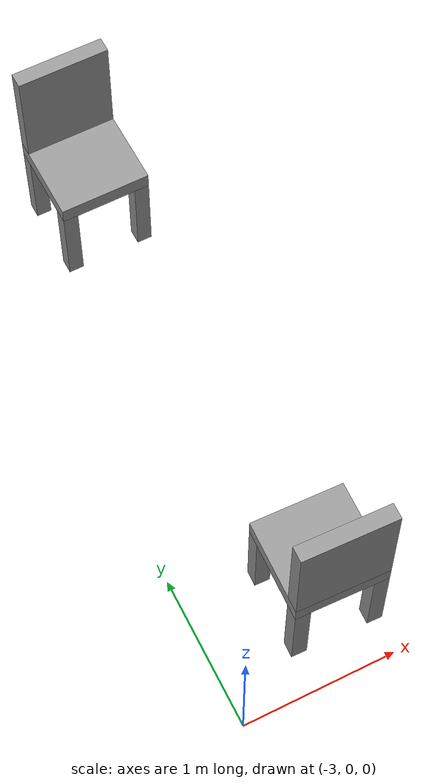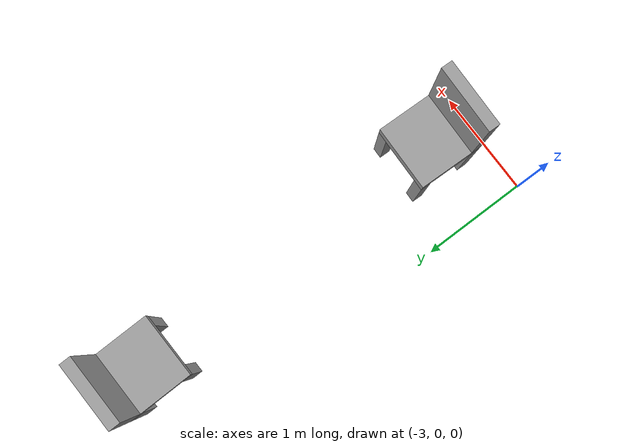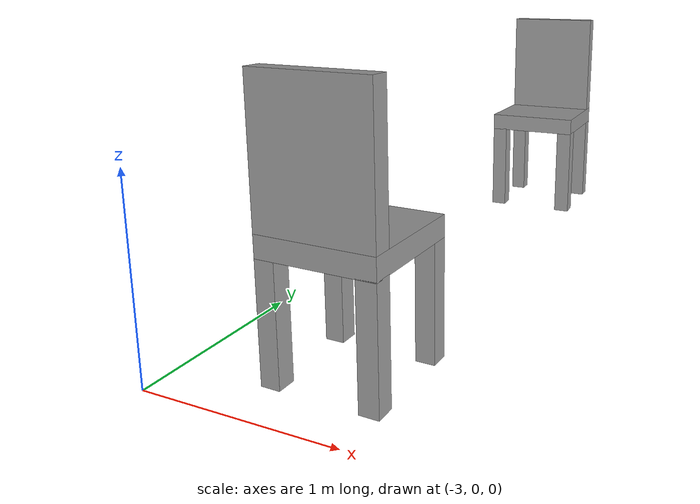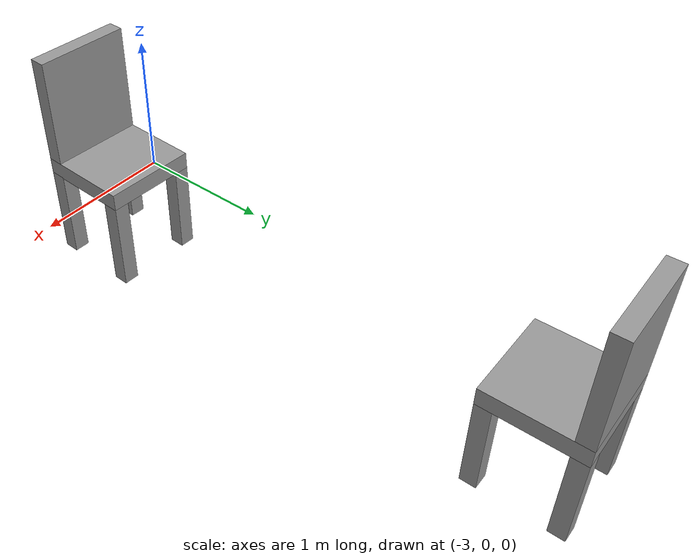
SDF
<sdf version="1.7">
 <world name="default">
  <model name="simple_chair_0_clone">
   <link name="link_0_clone">
    <inertial>
     <mass>1</mass>
     <inertia>
      <ixx>0.166667</ixx>
      <ixy>0</ixy>
      <ixz>0</ixz>
      <iyy>0.166667</iyy>
      <iyz>0</iyz>
      <izz>0.166667</izz>
     </inertia>
    </inertial>
    <pose>-0.041667 -0 0.165833 0 -0 0</pose>
    <visual name="visual">
     <geometry><box><size>0.6 0.6 0.11</size></box></geometry>
     <material>
      <lighting>1</lighting>
      <script><uri>file://media/materials/scripts/gazebo.material</uri><name>Gazebo/Grey</name></script>
      <shader type="pixel"><normal_map>__default__</normal_map></shader>
      <ambient>0.3 0.3 0.3 1</ambient>
      <diffuse>0.7 0.7 0.7 1</diffuse>
      <specular>0.01 0.01 0.01 1</specular>
      <emissive>0 0 0 1</emissive>
     </material>
    </visual>
    <collision name="collision">
     <geometry><box><size>0.6 0.6 0.1</size></box></geometry>
     <surface>
      <friction>
       <ode><mu>1</mu><mu2>1</mu2><fdir1>0 0 0</fdir1><slip1>0</slip1><slip2>0</slip2></ode>
       <torsional>
        <coefficient>1</coefficient>
        <patch_radius>0</patch_radius>
        <surface_radius>0</surface_radius>
        <use_patch_radius>1</use_patch_radius>
        <ode><slip>0</slip></ode>
       </torsional>
      </friction>
      <bounce><restitution_coefficient>0</restitution_coefficient><threshold>1e+06</threshold></bounce>
      <contact>
       <collide_without_contact>0</collide_without_contact>
       <collide_without_contact_bitmask>1</collide_without_contact_bitmask>
       <collide_bitmask>1</collide_bitmask>
       <ode>
        <soft_cfm>0</soft_cfm>
        <soft_erp>0.2</soft_erp>
        <kp>1e+13</kp>
        <kd>1</kd>
        <max_vel>0.01</max_vel>
        <min_depth>0</min_depth>
       </ode>
       <bullet>
        <split_impulse>1</split_impulse>
        <split_impulse_penetration_threshold>-0.01</split_impulse_penetration_threshold>
        <soft_cfm>0</soft_cfm>
        <soft_erp>0.2</soft_erp>
        <kp>1e+13</kp>
        <kd>1</kd>
       </bullet>
      </contact>
     </surface>
    </collision>
   </link>
   <link name="link_1_clone">
    <inertial>
     <mass>1</mass>
     <inertia>
      <ixx>0.166667</ixx>
      <ixy>0</ixy>
      <ixz>0</ixz>
      <iyy>0.166667</iyy>
      <iyz>0</iyz>
      <izz>0.166667</izz>
     </inertia>
    </inertial>
    <pose>-0.291667 0.25 -0.184167 0 -0 0</pose>
    <visual name="visual">
     <geometry><box><size>0.1 0.1 0.6</size></box></geometry>
     <material>
      <lighting>1</lighting>
      <script><uri>file://media/materials/scripts/gazebo.material</uri><name>Gazebo/Grey</name></script>
      <shader type="pixel"><normal_map>__default__</normal_map></shader>
      <ambient>0.3 0.3 0.3 1</ambient>
      <diffuse>0.7 0.7 0.7 1</diffuse>
      <specular>0.01 0.01 0.01 1</specular>
      <emissive>0 0 0 1</emissive>
     </material>
    </visual>
    <collision name="collision">
     <geometry><box><size>0.1 0.1 0.6</size></box></geometry>
     <surface>
      <friction>
       <ode><mu>1</mu><mu2>1</mu2><fdir1>0 0 0</fdir1><slip1>0</slip1><slip2>0</slip2></ode>
       <torsional>
        <coefficient>1</coefficient>
        <patch_radius>0</patch_radius>
        <surface_radius>0</surface_radius>
        <use_patch_radius>1</use_patch_radius>
        <ode><slip>0</slip></ode>
       </torsional>
      </friction>
      <bounce><restitution_coefficient>0</restitution_coefficient><threshold>1e+06</threshold></bounce>
      <contact>
       <collide_without_contact>0</collide_without_contact>
       <collide_without_contact_bitmask>1</collide_without_contact_bitmask>
       <collide_bitmask>1</collide_bitmask>
       <ode>
        <soft_cfm>0</soft_cfm>
        <soft_erp>0.2</soft_erp>
        <kp>1e+13</kp>
        <kd>1</kd>
        <max_vel>0.01</max_vel>
        <min_depth>0</min_depth>
       </ode>
       <bullet>
        <split_impulse>1</split_impulse>
        <split_impulse_penetration_threshold>-0.01</split_impulse_penetration_threshold>
        <soft_cfm>0</soft_cfm>
        <soft_erp>0.2</soft_erp>
        <kp>1e+13</kp>
        <kd>1</kd>
       </bullet>
      </contact>
     </surface>
    </collision>
   </link>
   <link name="link_1_clone_0">
    <inertial>
     <mass>1</mass>
     <inertia>
      <ixx>0.166667</ixx>
      <ixy>0</ixy>
      <ixz>0</ixz>
      <iyy>0.166667</iyy>
      <iyz>0</iyz>
      <izz>0.166667</izz>
     </inertia>
    </inertial>
    <pose>0.208333 0.25 -0.184167 0 -0 0</pose>
    <visual name="visual">
     <geometry><box><size>0.1 0.1 0.6</size></box></geometry>
     <material>
      <lighting>1</lighting>
      <script><uri>file://media/materials/scripts/gazebo.material</uri><name>Gazebo/Grey</name></script>
      <shader type="pixel"><normal_map>__default__</normal_map></shader>
      <ambient>0.3 0.3 0.3 1</ambient>
      <diffuse>0.7 0.7 0.7 1</diffuse>
      <specular>0.01 0.01 0.01 1</specular>
      <emissive>0 0 0 1</emissive>
     </material>
    </visual>
    <collision name="collision">
     <geometry><box><size>0.1 0.1 0.6</size></box></geometry>
     <surface>
      <friction>
       <ode><mu>1</mu><mu2>1</mu2><fdir1>0 0 0</fdir1><slip1>0</slip1><slip2>0</slip2></ode>
       <torsional>
        <coefficient>1</coefficient>
        <patch_radius>0</patch_radius>
        <surface_radius>0</surface_radius>
        <use_patch_radius>1</use_patch_radius>
        <ode><slip>0</slip></ode>
       </torsional>
      </friction>
      <bounce><restitution_coefficient>0</restitution_coefficient><threshold>1e+06</threshold></bounce>
      <contact>
       <collide_without_contact>0</collide_without_contact>
       <collide_without_contact_bitmask>1</collide_without_contact_bitmask>
       <collide_bitmask>1</collide_bitmask>
       <ode>
        <soft_cfm>0</soft_cfm>
        <soft_erp>0.2</soft_erp>
        <kp>1e+13</kp>
        <kd>1</kd>
        <max_vel>0.01</max_vel>
        <min_depth>0</min_depth>
       </ode>
       <bullet>
        <split_impulse>1</split_impulse>
        <split_impulse_penetration_threshold>-0.01</split_impulse_penetration_threshold>
        <soft_cfm>0</soft_cfm>
        <soft_erp>0.2</soft_erp>
        <kp>1e+13</kp>
        <kd>1</kd>
       </bullet>
      </contact>
     </surface>
    </collision>
   </link>
   <link name="link_1_clone_1">
    <inertial>
     <mass>1</mass>
     <inertia>
      <ixx>0.166667</ixx>
      <ixy>0</ixy>
      <ixz>0</ixz>
      <iyy>0.166667</iyy>
      <iyz>0</iyz>
      <izz>0.166667</izz>
     </inertia>
    </inertial>
    <pose>0.208333 -0.25 -0.184167 0 -0 0</pose>
    <visual name="visual">
     <geometry><box><size>0.1 0.1 0.6</size></box></geometry>
     <material>
      <lighting>1</lighting>
      <script><uri>file://media/materials/scripts/gazebo.material</uri><name>Gazebo/Grey</name></script>
      <shader type="pixel"><normal_map>__default__</normal_map></shader>
      <ambient>0.3 0.3 0.3 1</ambient>
      <diffuse>0.7 0.7 0.7 1</diffuse>
      <specular>0.01 0.01 0.01 1</specular>
      <emissive>0 0 0 1</emissive>
     </material>
    </visual>
    <collision name="collision">
     <geometry><box><size>0.1 0.1 0.6</size></box></geometry>
     <surface>
      <friction>
       <ode><mu>1</mu><mu2>1</mu2><fdir1>0 0 0</fdir1><slip1>0</slip1><slip2>0</slip2></ode>
       <torsional>
        <coefficient>1</coefficient>
        <patch_radius>0</patch_radius>
        <surface_radius>0</surface_radius>
        <use_patch_radius>1</use_patch_radius>
        <ode><slip>0</slip></ode>
       </torsional>
      </friction>
      <bounce><restitution_coefficient>0</restitution_coefficient><threshold>1e+06</threshold></bounce>
      <contact>
       <collide_without_contact>0</collide_without_contact>
       <collide_without_contact_bitmask>1</collide_without_contact_bitmask>
       <collide_bitmask>1</collide_bitmask>
       <ode>
        <soft_cfm>0</soft_cfm>
        <soft_erp>0.2</soft_erp>
        <kp>1e+13</kp>
        <kd>1</kd>
        <max_vel>0.01</max_vel>
        <min_depth>0</min_depth>
       </ode>
       <bullet>
        <split_impulse>1</split_impulse>
        <split_impulse_penetration_threshold>-0.01</split_impulse_penetration_threshold>
        <soft_cfm>0</soft_cfm>
        <soft_erp>0.2</soft_erp>
        <kp>1e+13</kp>
        <kd>1</kd>
       </bullet>
      </contact>
     </surface>
    </collision>
   </link>
   <link name="link_1_clone_clone">
    <inertial>
     <mass>1</mass>
     <inertia>
      <ixx>0.166667</ixx>
      <ixy>0</ixy>
      <ixz>0</ixz>
      <iyy>0.166667</iyy>
      <iyz>0</iyz>
      <izz>0.166667</izz>
     </inertia>
    </inertial>
    <pose>-0.291667 -0.25 -0.184167 0 -0 0</pose>
    <visual name="visual">
     <geometry><box><size>0.1 0.1 0.6</size></box></geometry>
     <material>
      <lighting>1</lighting>
      <script><uri>file://media/materials/scripts/gazebo.material</uri><name>Gazebo/Grey</name></script>
      <shader type="pixel"><normal_map>__default__</normal_map></shader>
      <ambient>0.3 0.3 0.3 1</ambient>
      <diffuse>0.7 0.7 0.7 1</diffuse>
      <specular>0.01 0.01 0.01 1</specular>
      <emissive>0 0 0 1</emissive>
     </material>
    </visual>
    <collision name="collision">
     <geometry><box><size>0.1 0.1 0.6</size></box></geometry>
     <surface>
      <friction>
       <ode><mu>1</mu><mu2>1</mu2><fdir1>0 0 0</fdir1><slip1>0</slip1><slip2>0</slip2></ode>
       <torsional>
        <coefficient>1</coefficient>
        <patch_radius>0</patch_radius>
        <surface_radius>0</surface_radius>
        <use_patch_radius>1</use_patch_radius>
        <ode><slip>0</slip></ode>
       </torsional>
      </friction>
      <bounce><restitution_coefficient>0</restitution_coefficient><threshold>1e+06</threshold></bounce>
      <contact>
       <collide_without_contact>0</collide_without_contact>
       <collide_without_contact_bitmask>1</collide_without_contact_bitmask>
       <collide_bitmask>1</collide_bitmask>
       <ode>
        <soft_cfm>0</soft_cfm>
        <soft_erp>0.2</soft_erp>
        <kp>1e+13</kp>
        <kd>1</kd>
        <max_vel>0.01</max_vel>
        <min_depth>0</min_depth>
       </ode>
       <bullet>
        <split_impulse>1</split_impulse>
        <split_impulse_penetration_threshold>-0.01</split_impulse_penetration_threshold>
        <soft_cfm>0</soft_cfm>
        <soft_erp>0.2</soft_erp>
        <kp>1e+13</kp>
        <kd>1</kd>
       </bullet>
      </contact>
     </surface>
    </collision>
   </link>
   <link name="link_2_clone">
    <inertial>
     <mass>1</mass>
     <inertia>
      <ixx>0.166667</ixx>
      <ixy>0</ixy>
      <ixz>0</ixz>
      <iyy>0.166667</iyy>
      <iyz>0</iyz>
      <izz>0.166667</izz>
     </inertia>
    </inertial>
    <pose>0.208333 -0 0.570833 0 -0 0</pose>
    <visual name="visual">
     <geometry><box><size>0.1 0.6 0.7</size></box></geometry>
     <material>
      <lighting>1</lighting>
      <script><uri>file://media/materials/scripts/gazebo.material</uri><name>Gazebo/Grey</name></script>
      <shader type="pixel"><normal_map>__default__</normal_map></shader>
      <ambient>0.3 0.3 0.3 1</ambient>
      <diffuse>0.7 0.7 0.7 1</diffuse>
      <specular>0.01 0.01 0.01 1</specular>
      <emissive>0 0 0 1</emissive>
     </material>
    </visual>
    <collision name="collision">
     <geometry><box><size>0.1 0.6 0.7</size></box></geometry>
     <surface>
      <friction>
       <ode><mu>1</mu><mu2>1</mu2><fdir1>0 0 0</fdir1><slip1>0</slip1><slip2>0</slip2></ode>
       <torsional>
        <coefficient>1</coefficient>
        <patch_radius>0</patch_radius>
        <surface_radius>0</surface_radius>
        <use_patch_radius>1</use_patch_radius>
        <ode><slip>0</slip></ode>
       </torsional>
      </friction>
      <bounce><restitution_coefficient>0</restitution_coefficient><threshold>1e+06</threshold></bounce>
      <contact>
       <collide_without_contact>0</collide_without_contact>
       <collide_without_contact_bitmask>1</collide_without_contact_bitmask>
       <collide_bitmask>1</collide_bitmask>
       <ode>
        <soft_cfm>0</soft_cfm>
        <soft_erp>0.2</soft_erp>
        <kp>1e+13</kp>
        <kd>1</kd>
        <max_vel>0.01</max_vel>
        <min_depth>0</min_depth>
       </ode>
       <bullet>
        <split_impulse>1</split_impulse>
        <split_impulse_penetration_threshold>-0.01</split_impulse_penetration_threshold>
        <soft_cfm>0</soft_cfm>
        <soft_erp>0.2</soft_erp>
        <kp>1e+13</kp>
        <kd>1</kd>
       </bullet>
      </contact>
     </surface>
    </collision>
   </link>
   <joint name="link_0_clone_JOINT_0" type="fixed">
    <parent>link_0_clone</parent>
    <child>link_1_clone_clone</child>
    <physics>
     <ode><limit><cfm>0</cfm><erp>0.2</erp></limit><suspension><cfm>0</cfm><erp>0.2</erp></suspension></ode>
    </physics>
   </joint>
   <joint name="link_0_clone_JOINT_1" type="fixed">
    <parent>link_0_clone</parent>
    <child>link_1_clone</child>
    <physics>
     <ode><limit><cfm>0</cfm><erp>0.2</erp></limit><suspension><cfm>0</cfm><erp>0.2</erp></suspension></ode>
    </physics>
   </joint>
   <joint name="link_0_clone_JOINT_2" type="fixed">
    <parent>link_0_clone</parent>
    <child>link_1_clone_1</child>
    <physics>
     <ode><limit><cfm>0</cfm><erp>0.2</erp></limit><suspension><cfm>0</cfm><erp>0.2</erp></suspension></ode>
    </physics>
   </joint>
   <joint name="link_0_clone_JOINT_3" type="fixed">
    <parent>link_0_clone</parent>
    <child>link_2_clone</child>
    <physics>
     <ode><limit><cfm>0</cfm><erp>0.2</erp></limit><suspension><cfm>0</cfm><erp>0.2</erp></suspension></ode>
    </physics>
   </joint>
   <joint name="link_0_clone_JOINT_4" type="fixed">
    <parent>link_0_clone</parent>
    <child>link_1_clone_0</child>
    <physics>
     <ode><limit><cfm>0</cfm><erp>0.2</erp></limit><suspension><cfm>0</cfm><erp>0.2</erp></suspension></ode>
    </physics>
   </joint>
   <static>0</static>
   <pose>-2.24789 0.495452 0.484167 0 2e-06 -1.59954</pose>
  </model>
  <model name="simple_chair_0_clone_1">
   <link name="link_0_clone">
    <inertial>
     <mass>1</mass>
     <inertia>
      <ixx>0.166667</ixx>
      <ixy>0</ixy>
      <ixz>0</ixz>
      <iyy>0.166667</iyy>
      <iyz>0</iyz>
      <izz>0.166667</izz>
     </inertia>
    </inertial>
    <pose>-0.041667 -0 0.165833 0 -0 0</pose>
    <visual name="visual">
     <geometry><box><size>0.6 0.6 0.11</size></box></geometry>
     <material>
      <lighting>1</lighting>
      <script><uri>file://media/materials/scripts/gazebo.material</uri><name>Gazebo/Grey</name></script>
      <shader type="pixel"><normal_map>__default__</normal_map></shader>
      <ambient>0.3 0.3 0.3 1</ambient>
      <diffuse>0.7 0.7 0.7 1</diffuse>
      <specular>0.01 0.01 0.01 1</specular>
      <emissive>0 0 0 1</emissive>
     </material>
    </visual>
    <collision name="collision">
     <geometry><box><size>0.6 0.6 0.1</size></box></geometry>
     <surface>
      <friction>
       <ode><mu>1</mu><mu2>1</mu2><fdir1>0 0 0</fdir1><slip1>0</slip1><slip2>0</slip2></ode>
       <torsional>
        <coefficient>1</coefficient>
        <patch_radius>0</patch_radius>
        <surface_radius>0</surface_radius>
        <use_patch_radius>1</use_patch_radius>
        <ode><slip>0</slip></ode>
       </torsional>
      </friction>
      <bounce><restitution_coefficient>0</restitution_coefficient><threshold>1e+06</threshold></bounce>
      <contact>
       <collide_without_contact>0</collide_without_contact>
       <collide_without_contact_bitmask>1</collide_without_contact_bitmask>
       <collide_bitmask>1</collide_bitmask>
       <ode>
        <soft_cfm>0</soft_cfm>
        <soft_erp>0.2</soft_erp>
        <kp>1e+13</kp>
        <kd>1</kd>
        <max_vel>0.01</max_vel>
        <min_depth>0</min_depth>
       </ode>
       <bullet>
        <split_impulse>1</split_impulse>
        <split_impulse_penetration_threshold>-0.01</split_impulse_penetration_threshold>
        <soft_cfm>0</soft_cfm>
        <soft_erp>0.2</soft_erp>
        <kp>1e+13</kp>
        <kd>1</kd>
       </bullet>
      </contact>
     </surface>
    </collision>
   </link>
   <link name="link_1_clone">
    <inertial>
     <mass>1</mass>
     <inertia>
      <ixx>0.166667</ixx>
      <ixy>0</ixy>
      <ixz>0</ixz>
      <iyy>0.166667</iyy>
      <iyz>0</iyz>
      <izz>0.166667</izz>
     </inertia>
    </inertial>
    <pose>-0.291667 0.25 -0.184167 0 -0 0</pose>
    <visual name="visual">
     <geometry><box><size>0.1 0.1 0.6</size></box></geometry>
     <material>
      <lighting>1</lighting>
      <script><uri>file://media/materials/scripts/gazebo.material</uri><name>Gazebo/Grey</name></script>
      <shader type="pixel"><normal_map>__default__</normal_map></shader>
      <ambient>0.3 0.3 0.3 1</ambient>
      <diffuse>0.7 0.7 0.7 1</diffuse>
      <specular>0.01 0.01 0.01 1</specular>
      <emissive>0 0 0 1</emissive>
     </material>
    </visual>
    <collision name="collision">
     <geometry><box><size>0.1 0.1 0.6</size></box></geometry>
     <surface>
      <friction>
       <ode><mu>1</mu><mu2>1</mu2><fdir1>0 0 0</fdir1><slip1>0</slip1><slip2>0</slip2></ode>
       <torsional>
        <coefficient>1</coefficient>
        <patch_radius>0</patch_radius>
        <surface_radius>0</surface_radius>
        <use_patch_radius>1</use_patch_radius>
        <ode><slip>0</slip></ode>
       </torsional>
      </friction>
      <bounce><restitution_coefficient>0</restitution_coefficient><threshold>1e+06</threshold></bounce>
      <contact>
       <collide_without_contact>0</collide_without_contact>
       <collide_without_contact_bitmask>1</collide_without_contact_bitmask>
       <collide_bitmask>1</collide_bitmask>
       <ode>
        <soft_cfm>0</soft_cfm>
        <soft_erp>0.2</soft_erp>
        <kp>1e+13</kp>
        <kd>1</kd>
        <max_vel>0.01</max_vel>
        <min_depth>0</min_depth>
       </ode>
       <bullet>
        <split_impulse>1</split_impulse>
        <split_impulse_penetration_threshold>-0.01</split_impulse_penetration_threshold>
        <soft_cfm>0</soft_cfm>
        <soft_erp>0.2</soft_erp>
        <kp>1e+13</kp>
        <kd>1</kd>
       </bullet>
      </contact>
     </surface>
    </collision>
   </link>
   <link name="link_1_clone_0">
    <inertial>
     <mass>1</mass>
     <inertia>
      <ixx>0.166667</ixx>
      <ixy>0</ixy>
      <ixz>0</ixz>
      <iyy>0.166667</iyy>
      <iyz>0</iyz>
      <izz>0.166667</izz>
     </inertia>
    </inertial>
    <pose>0.208333 0.25 -0.184167 0 -0 0</pose>
    <visual name="visual">
     <geometry><box><size>0.1 0.1 0.6</size></box></geometry>
     <material>
      <lighting>1</lighting>
      <script><uri>file://media/materials/scripts/gazebo.material</uri><name>Gazebo/Grey</name></script>
      <shader type="pixel"><normal_map>__default__</normal_map></shader>
      <ambient>0.3 0.3 0.3 1</ambient>
      <diffuse>0.7 0.7 0.7 1</diffuse>
      <specular>0.01 0.01 0.01 1</specular>
      <emissive>0 0 0 1</emissive>
     </material>
    </visual>
    <collision name="collision">
     <geometry><box><size>0.1 0.1 0.6</size></box></geometry>
     <surface>
      <friction>
       <ode><mu>1</mu><mu2>1</mu2><fdir1>0 0 0</fdir1><slip1>0</slip1><slip2>0</slip2></ode>
       <torsional>
        <coefficient>1</coefficient>
        <patch_radius>0</patch_radius>
        <surface_radius>0</surface_radius>
        <use_patch_radius>1</use_patch_radius>
        <ode><slip>0</slip></ode>
       </torsional>
      </friction>
      <bounce><restitution_coefficient>0</restitution_coefficient><threshold>1e+06</threshold></bounce>
      <contact>
       <collide_without_contact>0</collide_without_contact>
       <collide_without_contact_bitmask>1</collide_without_contact_bitmask>
       <collide_bitmask>1</collide_bitmask>
       <ode>
        <soft_cfm>0</soft_cfm>
        <soft_erp>0.2</soft_erp>
        <kp>1e+13</kp>
        <kd>1</kd>
        <max_vel>0.01</max_vel>
        <min_depth>0</min_depth>
       </ode>
       <bullet>
        <split_impulse>1</split_impulse>
        <split_impulse_penetration_threshold>-0.01</split_impulse_penetration_threshold>
        <soft_cfm>0</soft_cfm>
        <soft_erp>0.2</soft_erp>
        <kp>1e+13</kp>
        <kd>1</kd>
       </bullet>
      </contact>
     </surface>
    </collision>
   </link>
   <link name="link_1_clone_1">
    <inertial>
     <mass>1</mass>
     <inertia>
      <ixx>0.166667</ixx>
      <ixy>0</ixy>
      <ixz>0</ixz>
      <iyy>0.166667</iyy>
      <iyz>0</iyz>
      <izz>0.166667</izz>
     </inertia>
    </inertial>
    <pose>0.208333 -0.25 -0.184167 0 -0 0</pose>
    <visual name="visual">
     <geometry><box><size>0.1 0.1 0.6</size></box></geometry>
     <material>
      <lighting>1</lighting>
      <script><uri>file://media/materials/scripts/gazebo.material</uri><name>Gazebo/Grey</name></script>
      <shader type="pixel"><normal_map>__default__</normal_map></shader>
      <ambient>0.3 0.3 0.3 1</ambient>
      <diffuse>0.7 0.7 0.7 1</diffuse>
      <specular>0.01 0.01 0.01 1</specular>
      <emissive>0 0 0 1</emissive>
     </material>
    </visual>
    <collision name="collision">
     <geometry><box><size>0.1 0.1 0.6</size></box></geometry>
     <surface>
      <friction>
       <ode><mu>1</mu><mu2>1</mu2><fdir1>0 0 0</fdir1><slip1>0</slip1><slip2>0</slip2></ode>
       <torsional>
        <coefficient>1</coefficient>
        <patch_radius>0</patch_radius>
        <surface_radius>0</surface_radius>
        <use_patch_radius>1</use_patch_radius>
        <ode><slip>0</slip></ode>
       </torsional>
      </friction>
      <bounce><restitution_coefficient>0</restitution_coefficient><threshold>1e+06</threshold></bounce>
      <contact>
       <collide_without_contact>0</collide_without_contact>
       <collide_without_contact_bitmask>1</collide_without_contact_bitmask>
       <collide_bitmask>1</collide_bitmask>
       <ode>
        <soft_cfm>0</soft_cfm>
        <soft_erp>0.2</soft_erp>
        <kp>1e+13</kp>
        <kd>1</kd>
        <max_vel>0.01</max_vel>
        <min_depth>0</min_depth>
       </ode>
       <bullet>
        <split_impulse>1</split_impulse>
        <split_impulse_penetration_threshold>-0.01</split_impulse_penetration_threshold>
        <soft_cfm>0</soft_cfm>
        <soft_erp>0.2</soft_erp>
        <kp>1e+13</kp>
        <kd>1</kd>
       </bullet>
      </contact>
     </surface>
    </collision>
   </link>
   <link name="link_1_clone_clone">
    <inertial>
     <mass>1</mass>
     <inertia>
      <ixx>0.166667</ixx>
      <ixy>0</ixy>
      <ixz>0</ixz>
      <iyy>0.166667</iyy>
      <iyz>0</iyz>
      <izz>0.166667</izz>
     </inertia>
    </inertial>
    <pose>-0.291667 -0.25 -0.184167 0 -0 0</pose>
    <visual name="visual">
     <geometry><box><size>0.1 0.1 0.6</size></box></geometry>
     <material>
      <lighting>1</lighting>
      <script><uri>file://media/materials/scripts/gazebo.material</uri><name>Gazebo/Grey</name></script>
      <shader type="pixel"><normal_map>__default__</normal_map></shader>
      <ambient>0.3 0.3 0.3 1</ambient>
      <diffuse>0.7 0.7 0.7 1</diffuse>
      <specular>0.01 0.01 0.01 1</specular>
      <emissive>0 0 0 1</emissive>
     </material>
    </visual>
    <collision name="collision">
     <geometry><box><size>0.1 0.1 0.6</size></box></geometry>
     <surface>
      <friction>
       <ode><mu>1</mu><mu2>1</mu2><fdir1>0 0 0</fdir1><slip1>0</slip1><slip2>0</slip2></ode>
       <torsional>
        <coefficient>1</coefficient>
        <patch_radius>0</patch_radius>
        <surface_radius>0</surface_radius>
        <use_patch_radius>1</use_patch_radius>
        <ode><slip>0</slip></ode>
       </torsional>
      </friction>
      <bounce><restitution_coefficient>0</restitution_coefficient><threshold>1e+06</threshold></bounce>
      <contact>
       <collide_without_contact>0</collide_without_contact>
       <collide_without_contact_bitmask>1</collide_without_contact_bitmask>
       <collide_bitmask>1</collide_bitmask>
       <ode>
        <soft_cfm>0</soft_cfm>
        <soft_erp>0.2</soft_erp>
        <kp>1e+13</kp>
        <kd>1</kd>
        <max_vel>0.01</max_vel>
        <min_depth>0</min_depth>
       </ode>
       <bullet>
        <split_impulse>1</split_impulse>
        <split_impulse_penetration_threshold>-0.01</split_impulse_penetration_threshold>
        <soft_cfm>0</soft_cfm>
        <soft_erp>0.2</soft_erp>
        <kp>1e+13</kp>
        <kd>1</kd>
       </bullet>
      </contact>
     </surface>
    </collision>
   </link>
   <link name="link_2_clone">
    <inertial>
     <mass>1</mass>
     <inertia>
      <ixx>0.166667</ixx>
      <ixy>0</ixy>
      <ixz>0</ixz>
      <iyy>0.166667</iyy>
      <iyz>0</iyz>
      <izz>0.166667</izz>
     </inertia>
    </inertial>
    <pose>0.208333 -0 0.570833 0 -0 0</pose>
    <visual name="visual">
     <geometry><box><size>0.1 0.6 0.7</size></box></geometry>
     <material>
      <lighting>1</lighting>
      <script><uri>file://media/materials/scripts/gazebo.material</uri><name>Gazebo/Grey</name></script>
      <shader type="pixel"><normal_map>__default__</normal_map></shader>
      <ambient>0.3 0.3 0.3 1</ambient>
      <diffuse>0.7 0.7 0.7 1</diffuse>
      <specular>0.01 0.01 0.01 1</specular>
      <emissive>0 0 0 1</emissive>
     </material>
    </visual>
    <collision name="collision">
     <geometry><box><size>0.1 0.6 0.7</size></box></geometry>
     <surface>
      <friction>
       <ode><mu>1</mu><mu2>1</mu2><fdir1>0 0 0</fdir1><slip1>0</slip1><slip2>0</slip2></ode>
       <torsional>
        <coefficient>1</coefficient>
        <patch_radius>0</patch_radius>
        <surface_radius>0</surface_radius>
        <use_patch_radius>1</use_patch_radius>
        <ode><slip>0</slip></ode>
       </torsional>
      </friction>
      <bounce><restitution_coefficient>0</restitution_coefficient><threshold>1e+06</threshold></bounce>
      <contact>
       <collide_without_contact>0</collide_without_contact>
       <collide_without_contact_bitmask>1</collide_without_contact_bitmask>
       <collide_bitmask>1</collide_bitmask>
       <ode>
        <soft_cfm>0</soft_cfm>
        <soft_erp>0.2</soft_erp>
        <kp>1e+13</kp>
        <kd>1</kd>
        <max_vel>0.01</max_vel>
        <min_depth>0</min_depth>
       </ode>
       <bullet>
        <split_impulse>1</split_impulse>
        <split_impulse_penetration_threshold>-0.01</split_impulse_penetration_threshold>
        <soft_cfm>0</soft_cfm>
        <soft_erp>0.2</soft_erp>
        <kp>1e+13</kp>
        <kd>1</kd>
       </bullet>
      </contact>
     </surface>
    </collision>
   </link>
   <joint name="link_0_clone_JOINT_0" type="fixed">
    <parent>link_0_clone</parent>
    <child>link_1_clone_clone</child>
    <physics>
     <ode><limit><cfm>0</cfm><erp>0.2</erp></limit><suspension><cfm>0</cfm><erp>0.2</erp></suspension></ode>
    </physics>
   </joint>
   <joint name="link_0_clone_JOINT_1" type="fixed">
    <parent>link_0_clone</parent>
    <child>link_1_clone</child>
    <physics>
     <ode><limit><cfm>0</cfm><erp>0.2</erp></limit><suspension><cfm>0</cfm><erp>0.2</erp></suspension></ode>
    </physics>
   </joint>
   <joint name="link_0_clone_JOINT_2" type="fixed">
    <parent>link_0_clone</parent>
    <child>link_1_clone_1</child>
    <physics>
     <ode><limit><cfm>0</cfm><erp>0.2</erp></limit><suspension><cfm>0</cfm><erp>0.2</erp></suspension></ode>
    </physics>
   </joint>
   <joint name="link_0_clone_JOINT_3" type="fixed">
    <parent>link_0_clone</parent>
    <child>link_2_clone</child>
    <physics>
     <ode><limit><cfm>0</cfm><erp>0.2</erp></limit><suspension><cfm>0</cfm><erp>0.2</erp></suspension></ode>
    </physics>
   </joint>
   <joint name="link_0_clone_JOINT_4" type="fixed">
    <parent>link_0_clone</parent>
    <child>link_1_clone_0</child>
    <physics>
     <ode><limit><cfm>0</cfm><erp>0.2</erp></limit><suspension><cfm>0</cfm><erp>0.2</erp></suspension></ode>
    </physics>
   </joint>
   <static>0</static>
   <pose>-2.31752 3.60963 0.484167 0 -0 1.58926</pose>
  </model>
 </world>
</sdf>
